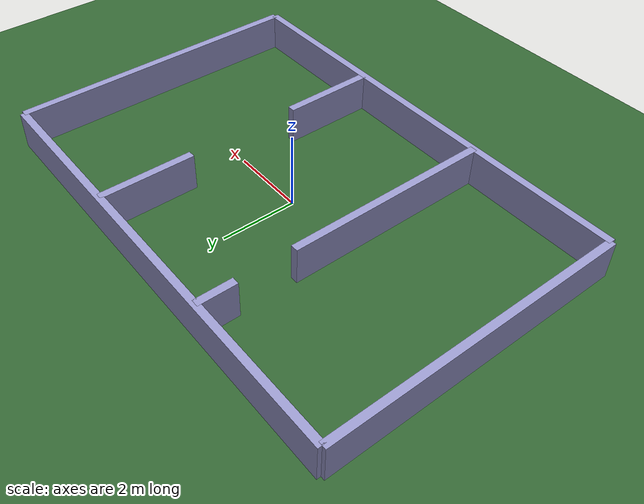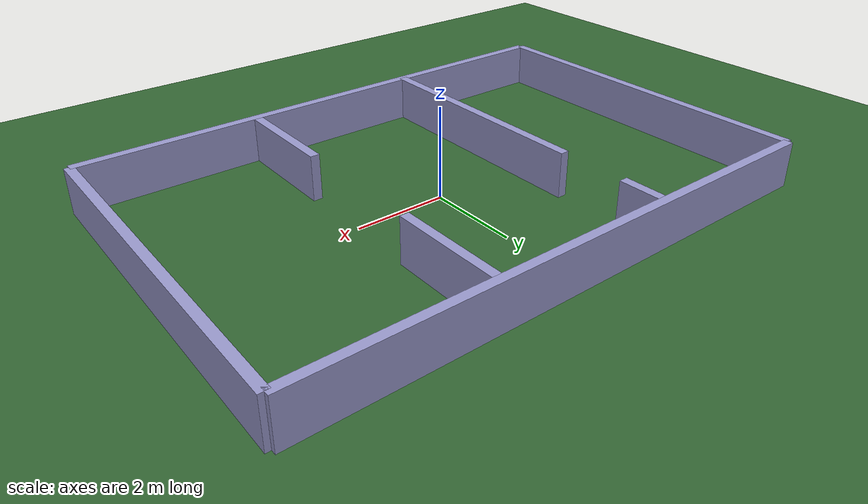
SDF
<?xml version="1.0"?>
<sdf version="1.6">
  <world name="guide_house">

    <plugin filename="gz-sim-physics-system" name="gz::sim::systems::Physics"></plugin>
    <plugin filename="gz-sim-user-commands-system" name="gz::sim::systems::UserCommands"></plugin>
    <plugin filename="gz-sim-scene-broadcaster-system" name="gz::sim::systems::SceneBroadcaster"></plugin>
    <plugin filename="gz-sim-sensors-system" name="gz::sim::systems::Sensors">
      <render_engine>ogre2</render_engine>
    </plugin>
    <plugin filename="gz-sim-imu-system" name="gz::sim::systems::Imu"></plugin>

    <light name="sun" type="directional">
      <cast_shadows>false</cast_shadows>
      <pose>0 0 10 0 0 0</pose>
      <diffuse>1 1 1 1</diffuse>
      <specular>0.3 0.3 0.3 1</specular>
      <direction>0 0 -1</direction>
    </light>

    <model name="ground_plane">
      <static>true</static>
      <link name="link">
        <collision name="collision">
          <geometry><plane><normal>0 0 1</normal><size>100 100</size></plane></geometry>
        </collision>
        <visual name="visual">
          <geometry><plane><normal>0 0 1</normal><size>100 100</size></plane></geometry>
          <material>
            <ambient>0.2 0.4 0.2 1</ambient>
            <diffuse>0.2 0.4 0.2 1</diffuse>
          </material>
        </visual>
      </link>
    </model>

    <gui fullscreen='0'>
      <plugin filename="MinimalScene" name="3D View">
        <gz-gui>
          <title>3D View</title>
          <property type="bool" key="showTitleBar">false</property>
          <property type="string" key="state">docked</property>
        </gz-gui>
        <engine>ogre2</engine>
        <scene>scene</scene>
        <ambient_light>0.4 0.4 0.4</ambient_light>
        <background_color>0.2 0.2 0.2</background_color>
        <camera_pose>0 0 20 0 1.5707963 0</camera_pose>
      </plugin>
      <plugin filename="GzSceneManager" name="Scene Manager">
        <gz-gui>
          <property key="resizable" type="bool">false</property>
          <property key="width" type="double">5</property>
          <property key="height" type="double">5</property>
          <property key="state" type="string">floating</property>
          <property key="showTitleBar" type="bool">false</property>
        </gz-gui>
      </plugin>
      <plugin filename="InteractiveViewControl" name="Interactive view control">
        <gz-gui>
          <property key="resizable" type="bool">false</property>
          <property key="width" type="double">5</property>
          <property key="height" type="double">5</property>
          <property key="state" type="string">floating</property>
          <property key="showTitleBar" type="bool">false</property>
        </gz-gui>
      </plugin>
      <plugin filename="WorldControl" name="World control">
        <gz-gui>
          <title>World control</title>
          <property type="bool" key="showTitleBar">false</property>
          <property type="bool" key="resizable">false</property>
          <property type="double" key="height">72</property>
          <property type="double" key="z">1</property>
          <property type="string" key="state">floating</property>
          <anchors target="3D View">
            <line own="left" target="left"/>
            <line own="bottom" target="bottom"/>
          </anchors>
        </gz-gui>
        <play_pause>true</play_pause>
        <step>true</step>
        <start_paused>true</start_paused>
        <use_event>true</use_event>
      </plugin>
      <plugin filename="EntityTree" name="Entity tree">
        <gz-gui>
          <property type="bool" key="showTitleBar">false</property>
          <property type="string" key="state">docked</property>
        </gz-gui>
      </plugin>
    </gui>

    <physics type="ode">
      <real_time_update_rate>1000.0</real_time_update_rate>
      <max_step_size>0.001</max_step_size>
      <real_time_factor>1</real_time_factor>
      <ode>
        <solver>
          <type>quick</type>
          <iters>150</iters>
          <sor>1.400000</sor>
        </solver>
        <constraints>
          <cfm>0.00001</cfm>
          <erp>0.2</erp>
          <contact_max_correcting_vel>2000.000000</contact_max_correcting_vel>
          <contact_surface_layer>0.01000</contact_surface_layer>
        </constraints>
      </ode>
    </physics>

    <!-- OUTER WALLS -->
    <model name="wall_bottom"><static>true</static><pose>0 -4 0.5 0 0 0</pose>
      <link name="link">
        <collision name="c"><geometry><box><size>12 0.2 1</size></box></geometry></collision>
        <visual name="v"><geometry><box><size>12 0.2 1</size></box></geometry>
          <material><ambient>0.6 0.6 0.8 1</ambient><diffuse>0.6 0.6 0.8 1</diffuse></material>
        </visual>
      </link>
    </model>

    <model name="wall_top"><static>true</static><pose>0 4 0.5 0 0 0</pose>
      <link name="link">
        <collision name="c"><geometry><box><size>12 0.2 1</size></box></geometry></collision>
        <visual name="v"><geometry><box><size>12 0.2 1</size></box></geometry>
          <material><ambient>0.6 0.6 0.8 1</ambient><diffuse>0.6 0.6 0.8 1</diffuse></material>
        </visual>
      </link>
    </model>

    <model name="wall_left"><static>true</static><pose>-6 0 0.5 0 0 0</pose>
      <link name="link">
        <collision name="c"><geometry><box><size>0.2 8 1</size></box></geometry></collision>
        <visual name="v"><geometry><box><size>0.2 8 1</size></box></geometry>
          <material><ambient>0.6 0.6 0.8 1</ambient><diffuse>0.6 0.6 0.8 1</diffuse></material>
        </visual>
      </link>
    </model>

    <model name="wall_right"><static>true</static><pose>6 0 0.5 0 0 0</pose>
      <link name="link">
        <collision name="c"><geometry><box><size>0.2 8 1</size></box></geometry></collision>
        <visual name="v"><geometry><box><size>0.2 8 1</size></box></geometry>
          <material><ambient>0.6 0.6 0.8 1</ambient><diffuse>0.6 0.6 0.8 1</diffuse></material>
        </visual>
      </link>
    </model>

    <!-- DIVIDER 1: Living Room | Kitchen (x=-2, doorway at y=1.5 to 3) -->
    <model name="divider1_upper"><static>true</static><pose>-2 3.5 0.5 0 0 0</pose>
      <link name="link">
        <collision name="c"><geometry><box><size>0.2 1 1</size></box></geometry></collision>
        <visual name="v"><geometry><box><size>0.2 1 1</size></box></geometry>
          <material><ambient>0.6 0.6 0.8 1</ambient><diffuse>0.6 0.6 0.8 1</diffuse></material>
        </visual>
      </link>
    </model>

    <model name="divider1_lower"><static>true</static><pose>-2 -1.25 0.5 0 0 0</pose>
      <link name="link">
        <collision name="c"><geometry><box><size>0.2 5.5 1</size></box></geometry></collision>
        <visual name="v"><geometry><box><size>0.2 5.5 1</size></box></geometry>
          <material><ambient>0.6 0.6 0.8 1</ambient><diffuse>0.6 0.6 0.8 1</diffuse></material>
        </visual>
      </link>
    </model>

    <!-- DIVIDER 2: Kitchen | Bedroom (x=2, doorway at y=-0.5 to 1) -->
    <model name="divider2_upper"><static>true</static><pose>2 2.75 0.5 0 0 0</pose>
      <link name="link">
        <collision name="c"><geometry><box><size>0.2 2.5 1</size></box></geometry></collision>
        <visual name="v"><geometry><box><size>0.2 2.5 1</size></box></geometry>
          <material><ambient>0.6 0.6 0.8 1</ambient><diffuse>0.6 0.6 0.8 1</diffuse></material>
        </visual>
      </link>
    </model>

    <model name="divider2_lower"><static>true</static><pose>2 -2.75 0.5 0 0 0</pose>
      <link name="link">
        <collision name="c"><geometry><box><size>0.2 2.5 1</size></box></geometry></collision>
        <visual name="v"><geometry><box><size>0.2 2.5 1</size></box></geometry>
          <material><ambient>0.6 0.6 0.8 1</ambient><diffuse>0.6 0.6 0.8 1</diffuse></material>
        </visual>
      </link>
    </model>

  </world>
</sdf>
